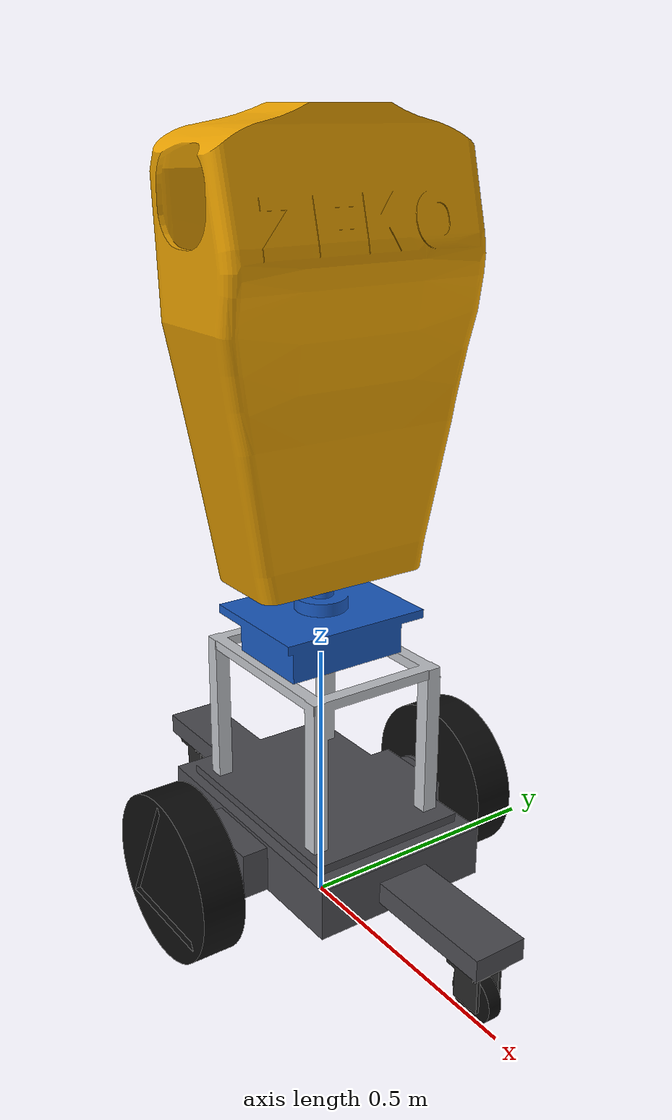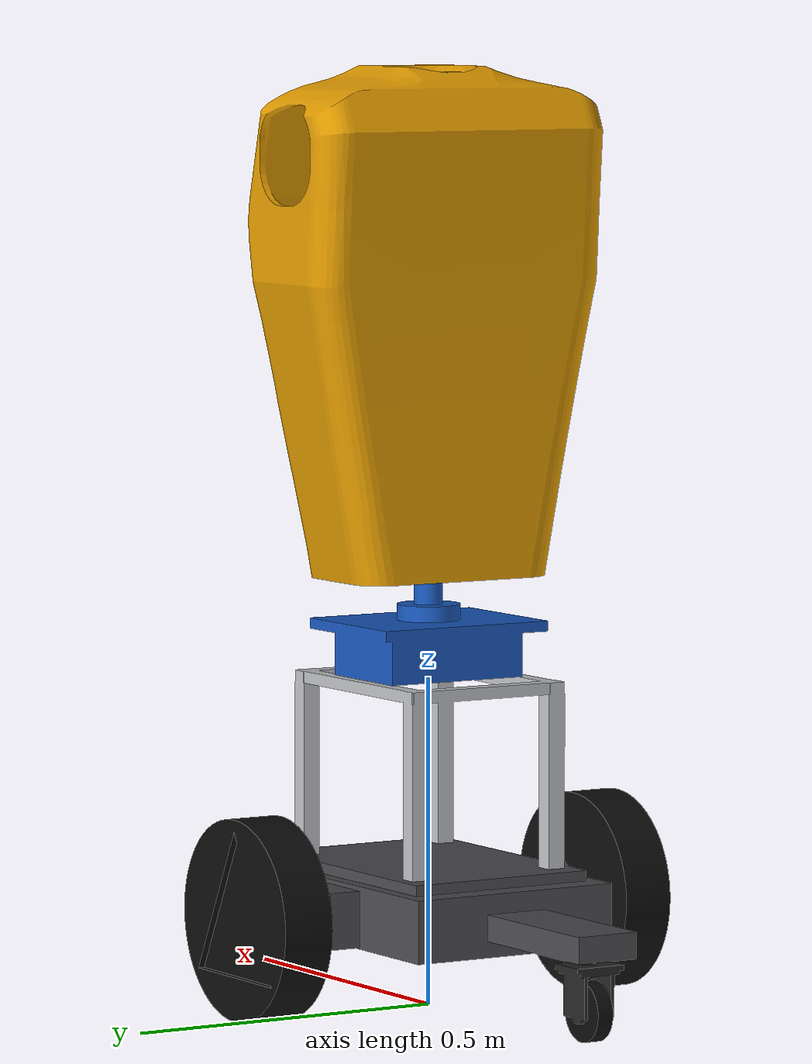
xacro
<?xml version="1.0"?>
<robot name="zeko" xmlns:xacro="http://www.ros.org/wiki/xacro">

  <xacro:include filename="$(find robot_base_simulation)/urdf/materials.xacro"/>
  <xacro:include filename="$(find robot_base_simulation)/urdf/base.xacro"/>
  <xacro:include filename="$(find robot_base_simulation)/urdf/wheels.xacro"/>
  <xacro:include filename="$(find robot_base_simulation)/urdf/casters.xacro"/>
  <xacro:include filename="$(find robot_base_simulation)/urdf/support_frame.xacro"/>
  <xacro:include filename="$(find robot_base_simulation)/urdf/pelvis_mount.xacro"/>

  <!-- LiDAR sensor frame (at body-base junction, z=0.68 m above base_link) -->
  <xacro:include filename="$(find robot_base_simulation)/urdf/lidar.xacro"/>

  <!-- Upper torso body — visual only, no physics -->
  <xacro:include filename="$(find robot_base_simulation)/urdf/body.xacro"/>

  <ros2_control name="zeko_system" type="system">
    <hardware>
      <plugin>mock_components/GenericSystem</plugin>
    </hardware>
    <joint name="left_wheel_joint">
      <command_interface name="velocity">
        <param name="min">-20.0</param>
        <param name="max">20.0</param>
      </command_interface>
      <state_interface name="position"/>
      <state_interface name="velocity"/>
    </joint>
    <joint name="right_wheel_joint">
      <command_interface name="velocity">
        <param name="min">-20.0</param>
        <param name="max">20.0</param>
      </command_interface>
      <state_interface name="position"/>
      <state_interface name="velocity"/>
    </joint>
  </ros2_control>

</robot>

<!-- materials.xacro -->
<robot xmlns:xacro="http://www.ros.org/wiki/xacro">

  <material name="zeko_chassis_grey">
    <color rgba="0.30 0.30 0.32 1.0"/>
  </material>

  <material name="zeko_wheel_black">
    <color rgba="0.05 0.05 0.05 1.0"/>
  </material>

  <material name="zeko_caster_dark_grey">
    <color rgba="0.15 0.15 0.15 1.0"/>
  </material>

  <material name="zeko_frame_silver">
    <color rgba="0.75 0.76 0.78 1.0"/>
  </material>

  <material name="zeko_pelvis_blue">
    <color rgba="0.10 0.35 0.75 1.0"/>
  </material>

</robot>

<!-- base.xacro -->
<robot xmlns:xacro="http://www.ros.org/wiki/xacro">

  <!-- ===================================================================
       CAD -> ROS AXIS REMAP
       =================================================================== -->
  <xacro:property name="cad_yaw" value="${-pi/2}"/>

  <!-- Chassis (base_link), CAD bbox: 0.65 x 1.00 x 0.124 m, bottom face
       at CAD_Z = 0.097 -->
  <xacro:property name="base_length" value="1.00"/>           <!-- ROS X (= CAD Y) [m] -->
  <xacro:property name="base_width" value="0.65"/>             <!-- ROS Y (= CAD X) [m] -->
  <xacro:property name="base_height" value="0.124"/>           <!-- ROS Z (= CAD Z) [m] -->
  <xacro:property name="base_bottom_z" value="0.097"/>         <!-- CAD_Z of base bottom face [m] -->
  <xacro:property name="base_com_z" value="0.16215671974457993"/> <!-- from Fusion, relative to base_link origin -->
  <xacro:property name="base_mass" value="59.345373525167496"/>  <!-- [kg], aluminum-scaled -->
  <!-- After -90 deg about Z: ROS_Ixx = CAD_Iyy, ROS_Iyy = CAD_Ixx, ROS_Izz = CAD_Izz
       (already aluminum-scaled) -->
  <xacro:property name="base_ixx" value="0.7383072611464968"/>
  <xacro:property name="base_iyy" value="1.8362699999999998"/>
  <xacro:property name="base_izz" value="2.4707211592356684"/>

  <!-- Drive wheels, CAD bbox: dia ~0.3048 m (~152.4 mm radius), width 0.08 m,
       centers at CAD_X = +-0.300, CAD_Z ~ 0.1524 -->
  <xacro:property name="wheel_radius" value="0.1524"/>         <!-- [m] (~6 in) -->
  <xacro:property name="wheel_width" value="0.08"/>
  <xacro:property name="wheel_separation" value="0.60"/>       <!-- center-to-center [m] -->
  <xacro:property name="wheel_mass" value="6.637983487286445"/>  <!-- [kg], rubber-scaled (each wheel) -->
  <!-- After -90 deg about Z: ROS_Ixx = CAD_Iyy, ROS_Iyy = CAD_Ixx (axial), ROS_Izz = CAD_Izz
       (already rubber-scaled). Sanity check: 0.5*m*r^2 = 0.0771, matches iyy. -->
  <xacro:property name="wheel_ixx" value="0.04316667515923567"/>
  <xacro:property name="wheel_iyy" value="0.07991526114649682"/>          <!-- about wheel rotation axis (Y) -->
  <xacro:property name="wheel_izz" value="0.04340789808917197"/>

  <!-- Casters, CAD bbox of the caster wheel: dia 0.09 m (45 mm radius),
       caster groups centered at CAD_Y = +-0.450 -->
  <xacro:property name="caster_radius" value="0.045"/>
  <xacro:property name="caster_x_offset" value="0.45"/>        <!-- ROS X offset from base center [m] -->
  <!-- Estimated from bbox volumes: ~0.40 kg aluminum fork (~30% solid
       fraction @ 2700 kg/m^3) + ~0.20 kg solid rubber wheel
       (@ 1200 kg/m^3) = ~0.6 kg combined. -->
  <xacro:property name="caster_mass" value="0.6"/>             <!-- [kg], estimated (aluminum fork + rubber wheel) -->

  <!-- Support frame, CAD bbox: 0.268 (X) x 0.348 (Y) x 0.283 (Z),
       bottom face at CAD_Z = 0.221 (= base_link top) -->
  <xacro:property name="support_frame_length" value="0.348"/>  <!-- ROS X (= CAD Y) [m] -->
  <xacro:property name="support_frame_width" value="0.268"/>   <!-- ROS Y (= CAD X) [m] -->
  <xacro:property name="support_frame_height" value="0.283"/>  <!-- ROS Z (= CAD Z) [m] -->
  <!-- Estimated from bbox volume (0.0264 m^3) at ~5% solid fraction
       (open frame, not a solid block) @ 2700 kg/m^3 (aluminum). -->
  <xacro:property name="support_frame_mass" value="3.5"/>      <!-- [kg], estimated (aluminum) -->

  <!-- Pelvis mount plate, CAD bbox: 0.285 (X) x 0.225 (Y) x 0.152 (Z),
       bottom face at CAD_Z = 0.504 (= support_frame top) -->
  <xacro:property name="pelvis_length" value="0.225"/>         <!-- ROS X (= CAD Y) [m] -->
  <xacro:property name="pelvis_width" value="0.285"/>          <!-- ROS Y (= CAD X) [m] -->
  <xacro:property name="pelvis_height" value="0.152"/>         <!-- ROS Z (= CAD Z) [m] -->
  <!-- Estimated from bbox volume (0.00976 m^3) at ~11% solid fraction
       @ 2700 kg/m^3 (aluminum). -->
  <xacro:property name="pelvis_mass" value="3.0"/>             <!-- [kg], estimated (aluminum) -->

  <!-- ===================================================================
       INERTIA HELPER MACROS
       =================================================================== -->

  <!-- Solid box inertia about its own center of mass -->
  <xacro:macro name="box_inertial" params="mass x y z *origin">
    <inertial>
      <xacro:insert_block name="origin"/>
      <mass value="${mass}"/>
      <inertia
        ixx="${(1.0/12.0) * mass * (y*y + z*z)}" ixy="0.0" ixz="0.0"
        iyy="${(1.0/12.0) * mass * (x*x + z*z)}" iyz="0.0"
        izz="${(1.0/12.0) * mass * (x*x + y*y)}"/>
    </inertial>
  </xacro:macro>

  <!-- Solid cylinder inertia about its own center of mass.
       Cylinder axis assumed along the link's local Y axis (matches the
       wheel mounting convention used in wheels.xacro: axis = (0 1 0)). -->
  <xacro:macro name="cylinder_inertial_y" params="mass r h *origin">
    <inertial>
      <xacro:insert_block name="origin"/>
      <mass value="${mass}"/>
      <inertia
        ixx="${(1.0/12.0) * mass * (3*r*r + h*h)}" ixy="0.0" ixz="0.0"
        iyy="${0.5 * mass * r*r}" iyz="0.0"
        izz="${(1.0/12.0) * mass * (3*r*r + h*h)}"/>
    </inertial>
  </xacro:macro>

  <!-- Solid sphere inertia about its own center of mass -->
  <xacro:macro name="sphere_inertial" params="mass r *origin">
    <inertial>
      <xacro:insert_block name="origin"/>
      <mass value="${mass}"/>
      <inertia
        ixx="${(2.0/5.0) * mass * r*r}" ixy="0.0" ixz="0.0"
        iyy="${(2.0/5.0) * mass * r*r}" iyz="0.0"
        izz="${(2.0/5.0) * mass * r*r}"/>
    </inertial>
  </xacro:macro>

  <link name="base_link">
    <visual>
      <origin xyz="0 0 0" rpy="0 0 ${cad_yaw}"/>
      <geometry>
        <mesh filename="package://robot_base_simulation/meshes/base_link.stl" scale="0.001 0.001 0.001"/>
      </geometry>
      <material name="zeko_chassis_grey"/>
    </visual>

    <collision>
      <!-- Simplified box collision, sized to the chassis envelope -->
      <origin xyz="0 0 ${base_bottom_z + base_height/2.0}" rpy="0 0 0"/>
      <geometry>
        <box size="${base_length} ${base_width} ${base_height}"/>
      </geometry>
    </collision>

    <inertial>
      <origin xyz="0 0 ${base_com_z}" rpy="0 0 0"/>
      <mass value="${base_mass}"/>
      <inertia ixx="${base_ixx}" ixy="0.0" ixz="0.0"
               iyy="${base_iyy}" iyz="0.0"
               izz="${base_izz}"/>
    </inertial>
  </link>

</robot>

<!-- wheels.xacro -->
<robot xmlns:xacro="http://www.ros.org/wiki/xacro">

  <xacro:macro name="zeko_wheel" params="prefix reflect">

    <link name="${prefix}_wheel_link">
      <visual>
        <origin xyz="0 ${-reflect * wheel_separation / 2.0} ${-wheel_radius}" rpy="0 0 ${cad_yaw}"/>
        <geometry>
          <mesh filename="package://robot_base_simulation/meshes/${prefix}_wheel_link.stl" scale="0.001 0.001 0.001"/>
        </geometry>
        <material name="zeko_wheel_black"/>
      </visual>

      <collision>
        <origin xyz="0 0 0" rpy="${pi/2} 0 0"/>
        <geometry>
          <cylinder radius="${wheel_radius}" length="${wheel_width}"/>
        </geometry>
      </collision>

      <inertial>
        <origin xyz="0 0 0" rpy="0 0 0"/>
        <mass value="${wheel_mass}"/>
        <inertia ixx="${wheel_ixx}" ixy="0.0" ixz="0.0"
                 iyy="${wheel_iyy}" iyz="0.0"
                 izz="${wheel_izz}"/>
      </inertial>
    </link>

    <joint name="${prefix}_wheel_joint" type="continuous">
      <parent link="base_link"/>
      <child link="${prefix}_wheel_link"/>
      <origin xyz="0 ${reflect * wheel_separation / 2.0} ${wheel_radius}" rpy="0 0 0"/>
      <axis xyz="0 1 0"/>
      <limit effort="60.0" velocity="20.0"/>
      <dynamics damping="0.1" friction="0.05"/>
    </joint>

  </xacro:macro>

  <!-- reflect = +1 -> +Y (left), reflect = -1 -> -Y (right) -->
  <xacro:zeko_wheel prefix="left" reflect="1"/>
  <xacro:zeko_wheel prefix="right" reflect="-1"/>

</robot>

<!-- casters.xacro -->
<robot xmlns:xacro="http://www.ros.org/wiki/xacro">

  <xacro:macro name="zeko_caster" params="prefix x_sign">

    <link name="${prefix}_caster_link">
      <visual>
        <origin xyz="${-x_sign * caster_x_offset} 0 ${-caster_radius}" rpy="0 0 ${cad_yaw}"/>
        <geometry>
          <mesh filename="package://robot_base_simulation/meshes/${prefix}_caster_fork.stl" scale="0.001 0.001 0.001"/>
        </geometry>
        <material name="zeko_caster_dark_grey"/>
      </visual>

      <visual>
        <origin xyz="${-x_sign * caster_x_offset} 0 ${-caster_radius}" rpy="0 0 ${cad_yaw}"/>
        <geometry>
          <mesh filename="package://robot_base_simulation/meshes/${prefix}_caster_wheel.stl" scale="0.001 0.001 0.001"/>
        </geometry>
        <material name="zeko_wheel_black"/>
      </visual>

      <collision>
        <origin xyz="0 0 0" rpy="0 0 0"/>
        <geometry>
          <sphere radius="${caster_radius}"/>
        </geometry>
      </collision>

      <xacro:sphere_inertial mass="${caster_mass}" r="${caster_radius}">
        <origin xyz="0 0 0" rpy="0 0 0"/>
      </xacro:sphere_inertial>
    </link>

    <joint name="${prefix}_caster_joint" type="fixed">
      <parent link="base_link"/>
      <child link="${prefix}_caster_link"/>
      <origin xyz="${x_sign * caster_x_offset} 0 ${caster_radius}" rpy="0 0 0"/>
    </joint>

  </xacro:macro>

  <!-- x_sign = +1 -> +X (front), x_sign = -1 -> -X (rear) -->
  <xacro:zeko_caster prefix="front" x_sign="1"/>
  <xacro:zeko_caster prefix="rear" x_sign="-1"/>

</robot>

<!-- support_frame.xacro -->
<robot xmlns:xacro="http://www.ros.org/wiki/xacro">

  <link name="support_frame_link">
    <visual>
      <origin xyz="0 0 -0.221" rpy="0 0 ${cad_yaw}"/>
      <geometry>
        <mesh filename="package://robot_base_simulation/meshes/support_frame_link.stl" scale="0.001 0.001 0.001"/>
      </geometry>
      <material name="zeko_frame_silver"/>
    </visual>

    <collision>
      <origin xyz="0 0 ${support_frame_height/2.0}" rpy="0 0 0"/>
      <geometry>
        <box size="${support_frame_length} ${support_frame_width} ${support_frame_height}"/>
      </geometry>
    </collision>

    <xacro:box_inertial mass="${support_frame_mass}" x="${support_frame_length}" y="${support_frame_width}" z="${support_frame_height}">
      <origin xyz="0 0 ${support_frame_height/2.0}" rpy="0 0 0"/>
    </xacro:box_inertial>
  </link>

  <joint name="support_frame_joint" type="fixed">
    <parent link="base_link"/>
    <child link="support_frame_link"/>
    <origin xyz="0 0 ${base_bottom_z + base_height}" rpy="0 0 0"/>
  </joint>

</robot>

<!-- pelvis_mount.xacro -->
<robot xmlns:xacro="http://www.ros.org/wiki/xacro">

  <link name="pelvis_mount_link">
    <visual>
      <origin xyz="0 0 -0.504" rpy="0 0 ${cad_yaw}"/>
      <geometry>
        <mesh filename="package://robot_base_simulation/meshes/pelvis_mount_link.stl" scale="0.001 0.001 0.001"/>
      </geometry>
      <material name="zeko_pelvis_blue"/>
    </visual>

    <collision>
      <origin xyz="0 0 ${pelvis_height/2.0}" rpy="0 0 0"/>
      <geometry>
        <box size="${pelvis_length} ${pelvis_width} ${pelvis_height}"/>
      </geometry>
    </collision>

    <xacro:box_inertial mass="${pelvis_mass}" x="${pelvis_length}" y="${pelvis_width}" z="${pelvis_height}">
      <origin xyz="0 0 ${pelvis_height/2.0}" rpy="0 0 0"/>
    </xacro:box_inertial>
  </link>

  <joint name="pelvis_mount_joint" type="fixed">
    <parent link="support_frame_link"/>
    <child link="pelvis_mount_link"/>
    <origin xyz="0 0 ${support_frame_height}" rpy="0 0 0"/>
  </joint>

</robot>

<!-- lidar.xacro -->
<robot xmlns:xacro="http://www.ros.org/wiki/xacro">

  <xacro:property name="lidar_x"   value="0.0"/>
  <xacro:property name="lidar_y"   value="0.0"/>
  <xacro:property name="lidar_z"   value="0.68"/>
  <xacro:property name="lidar_yaw" value="0.0"/>

  <link name="lidar_link">
    <visual>
      <origin xyz="0 0 0" rpy="0 0 0"/>
      <geometry>
        <cylinder radius="0.05" length="0.06"/>
      </geometry>
      <material name="lidar_grey">
        <color rgba="0.3 0.3 0.3 0.8"/>
      </material>
    </visual>
    <inertial>
      <origin xyz="0 0 0" rpy="0 0 0"/>
      <mass value="0.001"/>
      <inertia ixx="0.000001" ixy="0.0" ixz="0.0"
               iyy="0.000001" iyz="0.0" izz="0.000001"/>
    </inertial>
  </link>

  <joint name="lidar_joint" type="fixed">
    <parent link="base_link"/>
    <child  link="lidar_link"/>
    <origin xyz="${lidar_x} ${lidar_y} ${lidar_z}" rpy="0 0 ${lidar_yaw}"/>
  </joint>

</robot>

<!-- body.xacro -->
<robot xmlns:xacro="http://www.ros.org/wiki/xacro">

  <!-- Visual-only body link — no inertia, no collision -->
  <link name="body_link">
    <visual>
      <origin xyz="0 0.28 0.64" rpy="0 0 -1.5707963267948966"/>
      <geometry>
        <mesh filename="package://robot_base_simulation/meshes/zeko_body.obj"
              scale="0.01 0.01 0.01"/>
      </geometry>
    </visual>
    <!-- No collision — body is decorative, robot footprint is defined in Nav2 params -->
    <!-- No inertial — fixed joint, mass handled by pelvis_mount_link -->
  </link>

  <joint name="body_joint" type="fixed">
    <parent link="pelvis_mount_link"/>
    <child  link="body_link"/>
    <origin xyz="0 0 0.152" rpy="0 0 0"/>
  </joint>

</robot>
